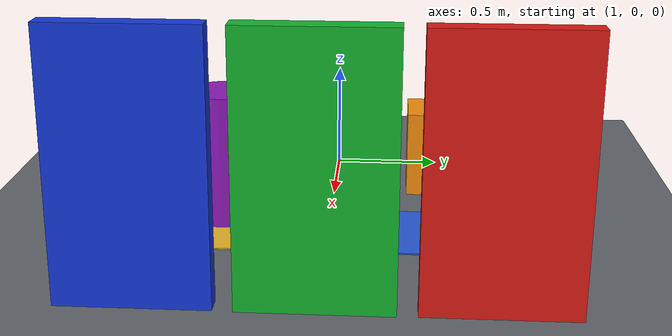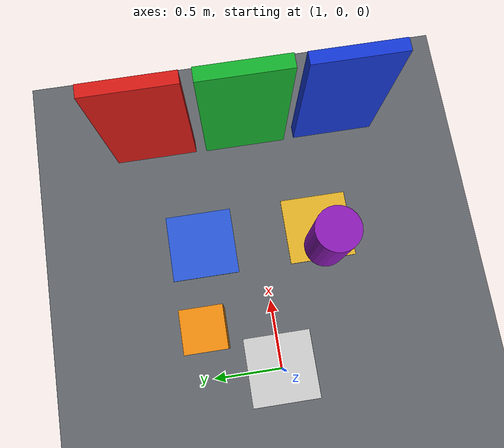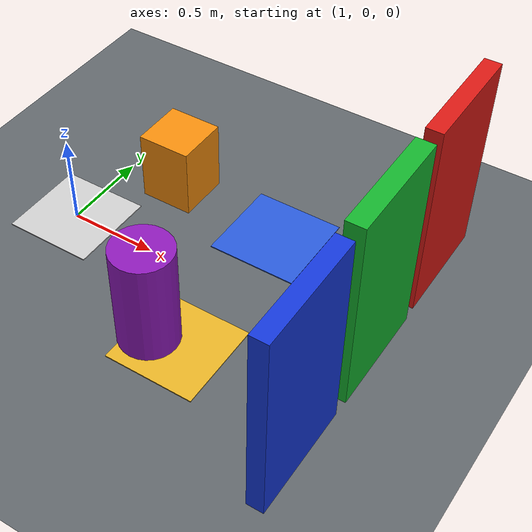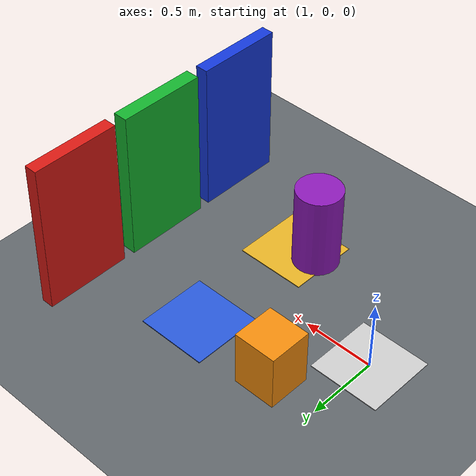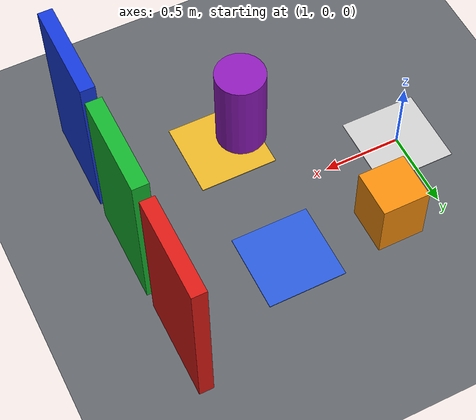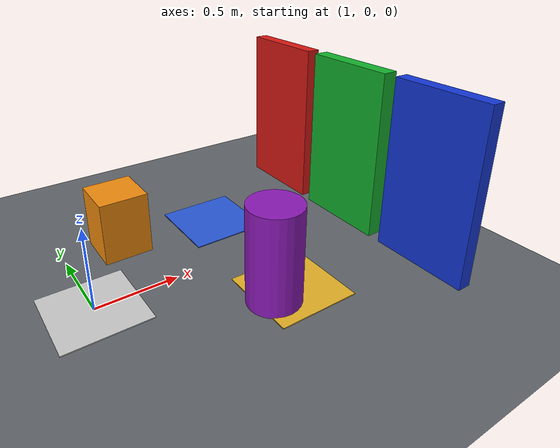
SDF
<?xml version="1.0"?>
<sdf version="1.6">
  <world name="duri_camera_test">
    <gravity>0 0 -9.80665</gravity>

    <spherical_coordinates>
      <heading_deg>180</heading_deg>
    </spherical_coordinates>

    <physics name="default_physics" default="true" type="ode">
      <max_step_size>0.001</max_step_size>
      <real_time_factor>1.0</real_time_factor>
      <real_time_update_rate>1000</real_time_update_rate>
    </physics>

    <scene>
      <ambient>0.55 0.55 0.55 1</ambient>
      <background>0.70 0.80 1.00 1</background>
      <shadows>true</shadows>
    </scene>

    <light name="sun" type="directional">
      <cast_shadows>true</cast_shadows>
      <pose>0 0 10 0 0 0</pose>
      <diffuse>0.9 0.9 0.85 1</diffuse>
      <specular>0.2 0.2 0.2 1</specular>
      <attenuation>
        <range>1000</range>
        <constant>0.9</constant>
        <linear>0.01</linear>
        <quadratic>0.001</quadratic>
      </attenuation>
      <direction>-0.45 0.20 -0.87</direction>
    </light>

    <model name="ground_plane">
      <static>true</static>
      <link name="link">
        <collision name="collision">
          <geometry>
            <plane>
              <normal>0 0 1</normal>
              <size>12 12</size>
            </plane>
          </geometry>
        </collision>
        <visual name="visual">
          <geometry>
            <plane>
              <normal>0 0 1</normal>
              <size>12 12</size>
            </plane>
          </geometry>
          <material>
            <ambient>0.38 0.40 0.42 1</ambient>
            <diffuse>0.38 0.40 0.42 1</diffuse>
          </material>
        </visual>
      </link>
    </model>

    <model name="floor_reference_tiles">
      <static>true</static>
      <link name="link">
        <visual name="tile_1m">
          <pose>1.0 0 0.003 0 0 0</pose>
          <geometry>
            <box>
              <size>0.50 0.50 0.006</size>
            </box>
          </geometry>
          <material>
            <ambient>0.80 0.80 0.80 1</ambient>
            <diffuse>0.80 0.80 0.80 1</diffuse>
          </material>
        </visual>
        <visual name="tile_left">
          <pose>2.0 0.45 0.003 0 0 0</pose>
          <geometry>
            <box>
              <size>0.50 0.50 0.006</size>
            </box>
          </geometry>
          <material>
            <ambient>0.16 0.35 0.85 1</ambient>
            <diffuse>0.16 0.35 0.85 1</diffuse>
          </material>
        </visual>
        <visual name="tile_right">
          <pose>2.0 -0.45 0.003 0 0 0</pose>
          <geometry>
            <box>
              <size>0.50 0.50 0.006</size>
            </box>
          </geometry>
          <material>
            <ambient>0.90 0.70 0.15 1</ambient>
            <diffuse>0.90 0.70 0.15 1</diffuse>
          </material>
        </visual>
      </link>
    </model>

    <model name="front_color_wall">
      <static>true</static>
      <pose>2.8 0 0 0 0 0</pose>
      <link name="link">
        <collision name="wall_collision">
          <pose>0 0 0.55 0 0 0</pose>
          <geometry>
            <box>
              <size>0.08 2.10 1.10</size>
            </box>
          </geometry>
        </collision>
        <visual name="red_left_panel">
          <pose>0 0.70 0.55 0 0 0</pose>
          <geometry>
            <box>
              <size>0.09 0.62 1.10</size>
            </box>
          </geometry>
          <material>
            <ambient>0.85 0.10 0.08 1</ambient>
            <diffuse>0.85 0.10 0.08 1</diffuse>
          </material>
        </visual>
        <visual name="green_center_panel">
          <pose>0 0 0.55 0 0 0</pose>
          <geometry>
            <box>
              <size>0.10 0.62 1.10</size>
            </box>
          </geometry>
          <material>
            <ambient>0.08 0.70 0.18 1</ambient>
            <diffuse>0.08 0.70 0.18 1</diffuse>
          </material>
        </visual>
        <visual name="blue_right_panel">
          <pose>0 -0.70 0.55 0 0 0</pose>
          <geometry>
            <box>
              <size>0.09 0.62 1.10</size>
            </box>
          </geometry>
          <material>
            <ambient>0.08 0.22 0.85 1</ambient>
            <diffuse>0.08 0.22 0.85 1</diffuse>
          </material>
        </visual>
      </link>
    </model>

    <model name="near_depth_targets">
      <static>true</static>
      <link name="link">
        <collision name="left_box_collision">
          <pose>1.35 0.50 0.20 0 0 0</pose>
          <geometry>
            <box>
              <size>0.30 0.30 0.40</size>
            </box>
          </geometry>
        </collision>
        <visual name="left_box_visual">
          <pose>1.35 0.50 0.20 0 0 0</pose>
          <geometry>
            <box>
              <size>0.30 0.30 0.40</size>
            </box>
          </geometry>
          <material>
            <ambient>0.95 0.55 0.05 1</ambient>
            <diffuse>0.95 0.55 0.05 1</diffuse>
          </material>
        </visual>
        <collision name="right_cylinder_collision">
          <pose>1.85 -0.48 0.30 0 0 0</pose>
          <geometry>
            <cylinder>
              <radius>0.16</radius>
              <length>0.60</length>
            </cylinder>
          </geometry>
        </collision>
        <visual name="right_cylinder_visual">
          <pose>1.85 -0.48 0.30 0 0 0</pose>
          <geometry>
            <cylinder>
              <radius>0.16</radius>
              <length>0.60</length>
            </cylinder>
          </geometry>
          <material>
            <ambient>0.55 0.10 0.72 1</ambient>
            <diffuse>0.55 0.10 0.72 1</diffuse>
          </material>
        </visual>
      </link>
    </model>
  </world>
</sdf>
